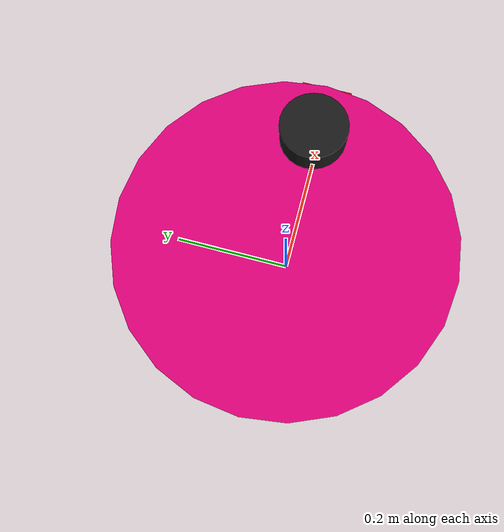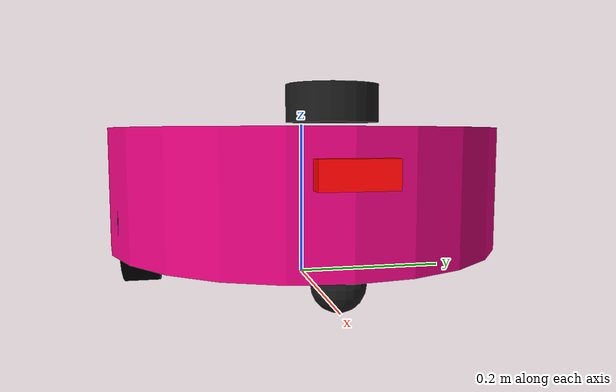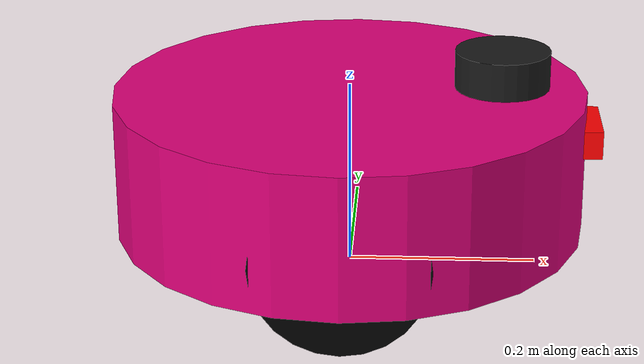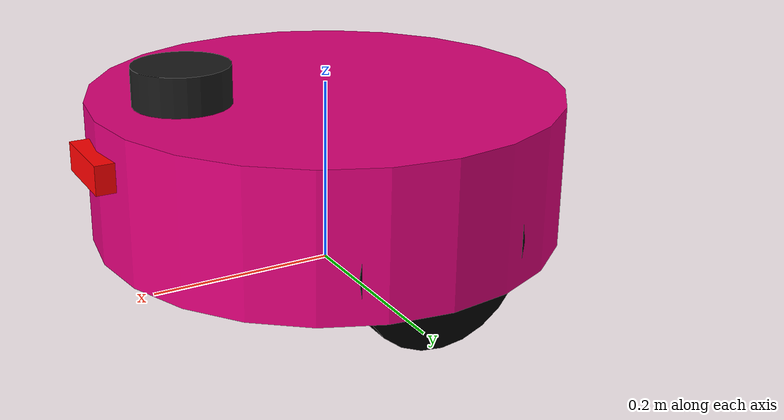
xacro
<?xml version="1.0"?>
<robot name="roomba" xmlns:xacro="http://www.ros.org/wiki/xacro">

    <!-- 🔗 INCLUDE EXTERNAL SENSOR XACRO FILES -->
    <xacro:include filename="$(find aruco_load_bay)/urdf/lidar.xacro"/>
    <xacro:include filename="$(find aruco_load_bay)/urdf/camera.xacro"/>

    <!-- ================= 1. PROPERTIES ================= -->
    <xacro:property name="chassis_radius" value="0.25"/>
    <xacro:property name="chassis_length" value="0.15"/>
    <xacro:property name="chassis_mass"   value="2.0"/>

    <xacro:property name="wheel_radius"   value="0.09"/>
    <xacro:property name="wheel_width"    value="0.044"/>
    <xacro:property name="wheel_mass"     value="0.2"/>
    <xacro:property name="wheel_y_offset" value="0.21"/>

    <xacro:property name="caster_radius"  value="0.03"/>
    <xacro:property name="caster_mass"    value="0.05"/>
    <xacro:property name="caster_x_offset" value="0.19"/>

    <!-- ================= 2. MATERIALS ================= -->
    <material name="violet"><color rgba="0.876 0 0.476 1"/></material>
    <material name="black"><color rgba="0 0 0 1"/></material>
    <material name="ash"><color rgba="0.1 0.1 0.1 1"/></material>
    <material name="red"><color rgba="1 0 0 1"/></material>

    <!-- ================= 3. BASE FOOTPRINT & BASE LINK ================= -->
    <link name="base_footprint"/>

    <joint name="base_footprint_joint" type="fixed">
        <parent link="base_footprint"/>
        <child link="base_link"/>
        <origin xyz="0 0 0.0" rpy="0 0 0"/>
    </joint>

    <link name="base_link">
        <visual>
            <origin xyz="0 0 0.12" rpy="0 0 0"/>
            <geometry>
                <cylinder radius="${chassis_radius}" length="${chassis_length}"/>
            </geometry>
            <material name="violet"/>
        </visual>
        <collision>
            <origin xyz="0 0 0.12" rpy="0 0 0"/>
            <geometry>
                <cylinder radius="${chassis_radius}" length="${chassis_length}"/>
            </geometry>
        </collision>
        <inertial>
            <origin xyz="0 0 0.12" rpy="0 0 0"/>
            <mass value="${chassis_mass}"/>
            <inertia ixx="0.035" ixy="0.0" ixz="0.0" iyy="0.035" iyz="0.0" izz="0.0625"/>
        </inertial>
    </link>

    <!-- ================= 4. DRIVE WHEEL MACRO ================= -->
    <xacro:macro name="drive_wheel" params="prefix y_reflect">
        <link name="${prefix}_wheel">
            <visual>
                <origin xyz="0 0 0" rpy="1.5708 0 0"/>
                <geometry>
                    <cylinder radius="${wheel_radius}" length="${wheel_width}"/>
                </geometry>
                <material name="black"/>
            </visual>
            <collision>
                <origin xyz="0 0 0" rpy="1.5708 0 0"/>
                <geometry>
                    <cylinder radius="${wheel_radius}" length="${wheel_width}"/>
                </geometry>
            </collision>
            <inertial>
                <origin xyz="0 0 0" rpy="1.5708 0 0"/>
                <mass value="${wheel_mass}"/>
                <inertia ixx="0.000437" ixy="0.0" ixz="0.0" iyy="0.000437" iyz="0.0" izz="0.00081"/>
            </inertial>
        </link>

        <joint name="${prefix}_wheel_joint" type="continuous">
            <parent link="base_link"/>
            <child link="${prefix}_wheel"/>
            <!-- Perfectly places wheel center so bottom rests on ground level -->
            <origin xyz="0 ${y_reflect * wheel_y_offset} ${wheel_radius}" rpy="0 0 0"/>
            <axis xyz="0 1 0"/>
        </joint>
    </xacro:macro>

    <!-- Instantiate Left and Right Drive Wheels -->
    <xacro:drive_wheel prefix="left"  y_reflect="1"/>
    <xacro:drive_wheel prefix="right" y_reflect="-1"/>

    <!-- ================= 5. CASTER BALL MACRO ================= -->
    <xacro:macro name="caster_ball" params="prefix x_reflect joint_name">
        <link name="${prefix}_link">
            <visual>
                <origin xyz="0 0 0" rpy="0 0 0"/>
                <geometry>
                    <sphere radius="${caster_radius}"/>
                </geometry>
                <material name="ash"/>
            </visual>
            <collision>
                <origin xyz="0 0 0" rpy="0 0 0"/>
                <geometry>
                    <sphere radius="${caster_radius}"/>
                </geometry>
            </collision>
            <inertial>
                <mass value="${caster_mass}"/>
                <inertia ixx="0.000018" ixy="0" ixz="0" iyy="0.000018" iyz="0" izz="0.000018"/>
            </inertial>
        </link>

        <joint name="${joint_name}" type="fixed">
            <parent link="base_link"/>
            <child link="${prefix}_link"/>
            <origin xyz="${x_reflect * caster_x_offset} 0 ${caster_radius}" rpy="0 0 0"/>
        </joint>
    </xacro:macro>

    <!-- Instantiate Front and Rear Casters -->
    <xacro:caster_ball prefix="ball"  x_reflect="1"  joint_name="cen_joint"/>
    <xacro:caster_ball prefix="ball2" x_reflect="-1" joint_name="b_joint"/>

    <!-- ================= 6. GAZEBO PLUGINS ================= -->
    <gazebo>
        <plugin filename="gz-sim-diff-drive-system" name="gz::sim::systems::DiffDrive">
            <left_joint>left_wheel_joint</left_joint>
            <right_joint>right_wheel_joint</right_joint>
            <wheel_separation>${wheel_y_offset * 2}</wheel_separation>
            <wheel_radius>${wheel_radius}</wheel_radius>

            <topic>/model/vacuum_bot/cmd_vel</topic>
            <odom_topic>/model/vacuum_bot/odom</odom_topic>
            <tf_topic>/tf</tf_topic>
            <frame_id>odom</frame_id>
            <child_frame_id>base_footprint</child_frame_id>
        </plugin>

        <plugin filename="gz-sim-joint-state-publisher-system" name="gz::sim::systems::JointStatePublisher">
            <joint_name>left_wheel_joint</joint_name>
            <joint_name>right_wheel_joint</joint_name>
            <topic>/joint_states</topic>
        </plugin>
    </gazebo>

</robot>

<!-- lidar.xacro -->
<robot xmlns:xacro="http://www.ros.org/wiki/xacro">

    <link name="sen_link">
        <visual>
            <geometry><cylinder radius="0.05" length="0.04"/></geometry>
            <material name="ash"><color rgba="0.1 0.1 0.1 1"/></material>
        </visual>
        <collision>
            <geometry><cylinder radius="0.05" length="0.04"/></geometry>
        </collision>
        <inertial>
            <mass value="0.1"/>
            <inertia ixx="0.0001" ixy="0" ixz="0" iyy="0.0001" iyz="0" izz="0.0001"/>
        </inertial>
    </link>

    <joint name="sen_joint" type="fixed">
        <parent link="base_link"/>
        <child link="sen_link"/>
        <origin xyz="0.16 0 0.22" rpy="0 0 0"/>
    </joint>

    <gazebo reference="sen_link">
        <sensor type="gpu_lidar" name="lidar">
            <update_rate>10</update_rate>
            <topic>/model/vacuum_bot/scan</topic>
            <gz_frame_id>sen_link</gz_frame_id>
            <lidar>
                <scan>
                    <horizontal>
                        <samples>180</samples>
                        <resolution>1</resolution>
                        <min_angle>-3.14159</min_angle>
                        <max_angle>3.14159</max_angle>
                    </horizontal>
                </scan>
                <range>
                    <min>0.15</min>
                    <max>12.0</max>
                </range>
            </lidar>
            <always_on>true</always_on>
            <visualize>true</visualize>
        </sensor>
    </gazebo>
</robot>

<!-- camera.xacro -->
<robot xmlns:xacro="http://www.ros.org/wiki/xacro">

    <!-- Camera Link -->
    <link name="camera_link">
        <visual>
            <origin xyz="0 0 0" rpy="0 0 0"/>
            <geometry>
                <box size="0.03 0.08 0.03"/>
            </geometry>
            <material name="red">
                <color rgba="1 0 0 1"/>
            </material>
        </visual>
        <collision>
            <origin xyz="0 0 0" rpy="0 0 0"/>
            <geometry>
                <box size="0.03 0.08 0.03"/>
            </geometry>
        </collision>
        <inertial>
            <mass value="0.05"/>
            <inertia ixx="0.00001" ixy="0.0" ixz="0.0" iyy="0.00001" iyz="0.0" izz="0.00001"/>
        </inertial>
    </link>

    <!-- Camera Joint (Mounted on front of base_link) -->
    <joint name="camera_joint" type="fixed">
        <parent link="base_link"/>
        <child link="camera_link"/>
        <origin xyz="0.25 0 0.15" rpy="0 0 0"/>
    </joint>

    <!-- Optical Joint (Corrects orientation for RViz/ROS camera frame standard) -->
    <link name="camera_link_optical"/>

    <joint name="camera_optical_joint" type="fixed">
        <parent link="camera_link"/>
        <child link="camera_link_optical"/>
        <origin xyz="0 0 0" rpy="-1.5708 0 -1.5708"/>
    </joint>

    <!-- Gazebo Camera Plugin -->
    <gazebo reference="camera_link">
        <sensor type="camera" name="camera_sensor">
            <update_rate>30.0</update_rate>
            <camera name="head">
                <horizontal_fov>1.3962634</horizontal_fov>
                <image>
                    <width>640</width>
                    <height>480</height>
                    <format>R8G8B8</format>
                </image>
                <clip>
                    <near>0.02</near>
                    <far>300</far>
                </clip>
            </camera>
            <always_on>true</always_on>
            <visualize>true</visualize>
            <topic>/model/vacuum_bot/image_raw</topic>
        </sensor>
    </gazebo>

</robot>
